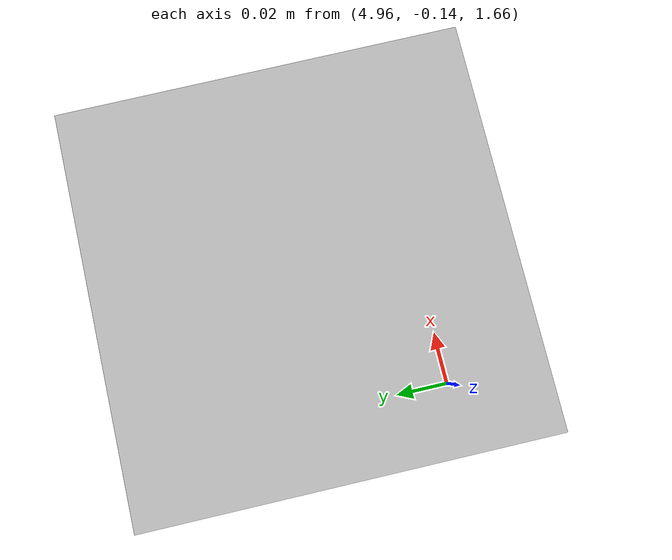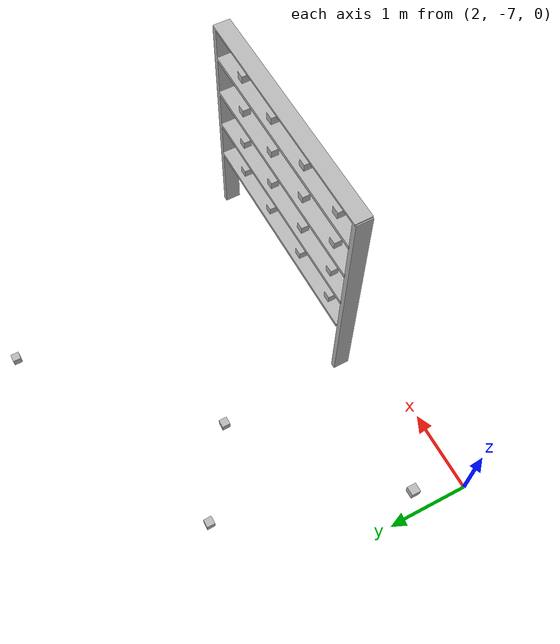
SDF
<sdf version="1.9">
 <world name="bases">
  <plugin name="gz::sim::systems::Physics" filename="gz-sim-physics-system"/>
  <plugin name="gz::sim::systems::UserCommands" filename="gz-sim-user-commands-system"/>
  <plugin name="gz::sim::systems::SceneBroadcaster" filename="gz-sim-scene-broadcaster-system"/>
  <plugin name="gz::sim::systems::Contact" filename="gz-sim-contact-system"/>
  <plugin name="gz::sim::systems::Imu" filename="gz-sim-imu-system"/>
  <plugin name="gz::sim::systems::AirPressure" filename="gz-sim-air-pressure-system"/>
  <plugin name="gz::sim::systems::ApplyLinkWrench" filename="gz-sim-apply-link-wrench-system"/>
  <plugin name="gz::sim::systems::NavSat" filename="gz-sim-navsat-system"/>
  <plugin name="gz::sim::systems::Sensors" filename="gz-sim-sensors-system">
   <render_engine>ogre2</render_engine>
  </plugin>
  <spherical_coordinates>
   <surface_model>EARTH_WGS84</surface_model>
   <latitude_deg>37.411802</latitude_deg>
   <longitude_deg>-121.995739</longitude_deg>
   <elevation>0.0</elevation>
   <heading_deg>0</heading_deg>
  </spherical_coordinates>
  <physics name="default_physics" default="0" type="ode">
   <gravity>0 0 -9.8066</gravity>
   <max_step_size>0.004</max_step_size>
   <real_time_factor>1.0</real_time_factor>
   <real_time_update_rate>250</real_time_update_rate>
   <magnetic_field>6.0e-06 2.3e-05 -4.2e-05</magnetic_field>
  </physics>
  <scene><shadows>false</shadows><ambient>0.4 0.4 0.4 1</ambient><background>0.7 0.7 0.7 1</background></scene>
  <light type="directional" name="sun">
   <pose>250 250 600 0 0 0</pose>
   <diffuse>0.8 0.8 0.8 1</diffuse>
   <specular>0.2 0.2 0.2 1</specular>
   <attenuation>
    <range>1000</range>
    <constant>0.9</constant>
    <linear>0.01</linear>
    <quadratic>0.001</quadratic>
   </attenuation>
   <direction>0 0 -1</direction>
  </light>
  <include><uri>model://Estante</uri><pose>3 6 0 0 0 0</pose><name>estante</name></include>
  <include><uri>model://Pacote_A</uri><pose>3 1 0 0 0 0</pose><name>pacote_A</name></include>
  <include><uri>model://Pacote_B</uri><pose>3 1 0 0 0 0</pose><name>pacote_B</name></include>
  <include><uri>model://Pacote_C</uri><pose>3 1 0 0 0 0</pose><name>pacote_C</name></include>
  <include><uri>model://Pacote_D</uri><pose>3 1 0 0 0 0</pose><name>pacote_D</name></include>
  <include><uri>model://Pacote_E</uri><pose>3 1 0 0 0 0</pose><name>pacote_E</name></include>
  <model name="the_void">
   <static>true</static>
   <link name="link">
    <pose>0 0 0.1 0 0 0</pose>
    <visual name="the_void">
     <pose>0 0 2 0 0 0</pose>
     <geometry><sphere><radius>0.25</radius></sphere></geometry>
     <material><ambient>0 0 0 1</ambient><diffuse>0 0 0 1</diffuse><specular>0 0 0 1</specular></material>
    </visual>
   </link>
   <pose>-1000 -1000 0 0 0 0</pose>
  </model>
  <gravity>0 0 -9.8</gravity>
  <magnetic_field>6e-06 2.3e-05 -4.2e-05</magnetic_field>
  <atmosphere type="adiabatic"/>
 </world>
</sdf>

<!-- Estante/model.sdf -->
<sdf version="1.9">
  <model name="Estante">
    <static>true</static> <!-- Define como false para que o objeto tenha física -->
    <link name="link_E">
      <pose>7.2 -15 0 -11 0 11</pose>

      <inertial>
        <mass>5.0</mass> <!-- Define a massa do objeto -->
        <inertia> <!-- Define o momento de inércia -->
          <ixx>0.2</ixx>
          <ixy>0.2</ixy>
          <ixz>0.2</ixz>
        </inertia>
      </inertial>
      <gravity>true</gravity>
      <collision name="collision">
        <geometry>
          <mesh>
            <uri>model://Estante/meshes/estantedef.obj</uri>
            <scale>1 1 1</scale>
          </mesh>
        </geometry>
      </collision>

      <visual name="visual">
        <geometry>
          <mesh>
            <uri>model://Estante/meshes/estantedef.obj</uri>
            <scale>1 1 1</scale>
          </mesh>
        </geometry>
      </visual>
    </link>
  </model>
</sdf>

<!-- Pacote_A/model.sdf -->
<sdf version="1.9">
  <model name="pacote A">
    <static>true</static> <!-- Define como false para que o objeto tenha física -->
    <link name="link_00">
      <pose>-1 -7.1 1.18 -11 0 0</pose>

      <inertial>
        <mass>10.0</mass> <!-- Define a massa do objeto -->
        <inertia> <!-- Define o momento de inércia -->
          <ixx>0.4</ixx>
          <ixy>0.0</ixy> <!-- Componentes cruzadas de inércia zeradas -->
          <ixz>0.0</ixz>
          <iyy>0.4</iyy>
          <iyz>0.0</iyz>
          <izz>0.4</izz>
        </inertia>
      </inertial>
      <gravity>true</gravity>
      <collision name="collision">
        <geometry>
          <mesh>
            <uri>model://Pacote_A/meshes/pacote.obj</uri>
            <scale>1 1 1</scale>
          </mesh>
        </geometry>
        <surface>
          <friction>
            <ode>
              <mu>1.0</mu> <!-- Coeficiente de fricção -->
              <mu2>1.0</mu2>
            </ode>
          </friction>
        </surface>
      </collision>

      <visual name="visual">
        <geometry>
          <mesh>
            <uri>model://Pacote_A/meshes/pacote.obj</uri>
            <scale>1 1 1</scale>
          </mesh>
        </geometry>
      </visual>
    </link>
  </model>
</sdf>

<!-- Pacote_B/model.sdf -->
<sdf version="1.9">
  <model name="pacote B">
    <static>true</static> <!-- Define como false para que o objeto tenha física -->
    <link name="link_00">
      <pose>0 -5.2 0.02 -11 0 0</pose>

      <inertial>
        <mass>10.0</mass> <!-- Define a massa do objeto -->
        <inertia> <!-- Define o momento de inércia -->
          <ixx>0.4</ixx>
          <ixy>0.0</ixy> <!-- Componentes cruzadas de inércia zeradas -->
          <ixz>0.0</ixz>
          <iyy>0.4</iyy>
          <iyz>0.0</iyz>
          <izz>0.4</izz>
        </inertia>
      </inertial>
      <gravity>true</gravity>
      <collision name="collision">
        <geometry>
          <mesh>
            <uri>model://Pacote_B/meshes/pacote.obj</uri>
            <scale>1 1 1</scale>
          </mesh>
        </geometry>
        <surface>
          <friction>
            <ode>
              <mu>1.0</mu> <!-- Coeficiente de fricção -->
              <mu2>1.0</mu2>
            </ode>
          </friction>
        </surface>
      </collision>

      <visual name="visual">
        <geometry>
          <mesh>
            <uri>model://Pacote_B/meshes/pacote.obj</uri>
            <scale>1 1 1</scale>
          </mesh>
        </geometry>
      </visual>
    </link>
  </model>
</sdf>

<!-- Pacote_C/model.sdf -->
<sdf version="1.9">
  <model name="pacote C">
    <static>true</static> <!-- Define como false para que o objeto tenha física -->
    <link name="link_00">
      <pose>2 -1.1 1.68 -11 0 0</pose>

      <inertial>
        <mass>10.0</mass> <!-- Define a massa do objeto -->
        <inertia> <!-- Momento de inércia ajustado -->
          <ixx>0.4</ixx>
          <ixy>0.0</ixy> <!-- Componentes cruzadas de inércia zeradas -->
          <ixz>0.0</ixz>
          <iyy>0.4</iyy>
          <iyz>0.0</iyz>
          <izz>0.4</izz>
        </inertia>
      </inertial>
      <gravity>true</gravity>
      <collision name="collision">
        <geometry>
          <mesh>
            <uri>model://Pacote_C/meshes/pacote.obj</uri>
            <scale>1 1 1</scale>
          </mesh>
        </geometry>
        <surface>
          <friction>
            <ode>
              <mu>1.0</mu> <!-- Coeficiente de fricção -->
              <mu2>1.0</mu2>
            </ode>
          </friction>
        </surface>
      </collision>

      <visual name="visual">
        <geometry>
          <mesh>
            <uri>model://Pacote_C/meshes/pacote.obj</uri>
            <scale>1 1 1</scale>
          </mesh>
        </geometry>
      </visual>
    </link>
  </model>
</sdf>

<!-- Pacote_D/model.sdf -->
<sdf version="1.9">
  <model name="pacote D">
    <static>true</static> <!-- Define como false para que o objeto tenha física -->
    <link name="link_00">
      <pose>3 -4 0.02 -11 0 0</pose>

      <inertial>
        <mass>10.0</mass> <!-- Define a massa do objeto -->
        <inertia> <!-- Momento de inércia ajustado -->
          <ixx>0.4</ixx>
          <ixy>0.0</ixy> <!-- Componentes cruzadas de inércia zeradas -->
          <ixz>0.0</ixz>
          <iyy>0.4</iyy>
          <iyz>0.0</iyz>
          <izz>0.4</izz>
        </inertia>
      </inertial>
      <gravity>true</gravity>
      <collision name="collision">
        <geometry>
          <mesh>
            <uri>model://Pacote_D/meshes/pacote.obj</uri>
            <scale>1 1 1</scale>
          </mesh>
        </geometry>
         <surface>
          <friction>
            <ode>
              <mu>1.0</mu> <!-- Coeficiente de fricção -->
              <mu2>1.0</mu2>
            </ode>
          </friction>
        </surface>
      </collision>

      <visual name="visual">
        <geometry>
          <mesh>
            <uri>model://Pacote_D/meshes/pacote.obj</uri>
            <scale>1 1 1</scale>
          </mesh>
        </geometry>
      </visual>
    </link>
  </model>
</sdf>

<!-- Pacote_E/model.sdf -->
<sdf version="1.9">
  <model name="pacote E">
    <static>true</static> <!-- Define como false para que o objeto tenha física -->
    <link name="link_00">
      <pose>1 -5.9 0.02 -11 0 0</pose>

      <inertial>
        <mass>10.0</mass> <!-- Define a massa do objeto -->
         <inertia> <!-- Momento de inércia ajustado -->
          <ixx>0.4</ixx>
          <ixy>0.0</ixy> <!-- Componentes cruzadas de inércia zeradas -->
          <ixz>0.0</ixz>
          <iyy>0.4</iyy>
          <iyz>0.0</iyz>
          <izz>0.4</izz>
        </inertia>
      </inertial>
      <gravity>true</gravity>
      <collision name="collision">
        <geometry>
          <mesh>
            <uri>model://Pacote_E/meshes/pacote.obj</uri>
            <scale>1 1 1</scale>
          </mesh>
        </geometry>
         <surface>
          <friction>
            <ode>
              <mu>1.0</mu> <!-- Coeficiente de fricção -->
              <mu2>1.0</mu2>
            </ode>
          </friction>
        </surface>
      </collision>

      <visual name="visual">
        <geometry>
          <mesh>
            <uri>model://Pacote_E/meshes/pacote.obj</uri>
            <scale>1 1 1</scale>
          </mesh>
        </geometry>
      </visual>
    </link>
  </model>
</sdf>
